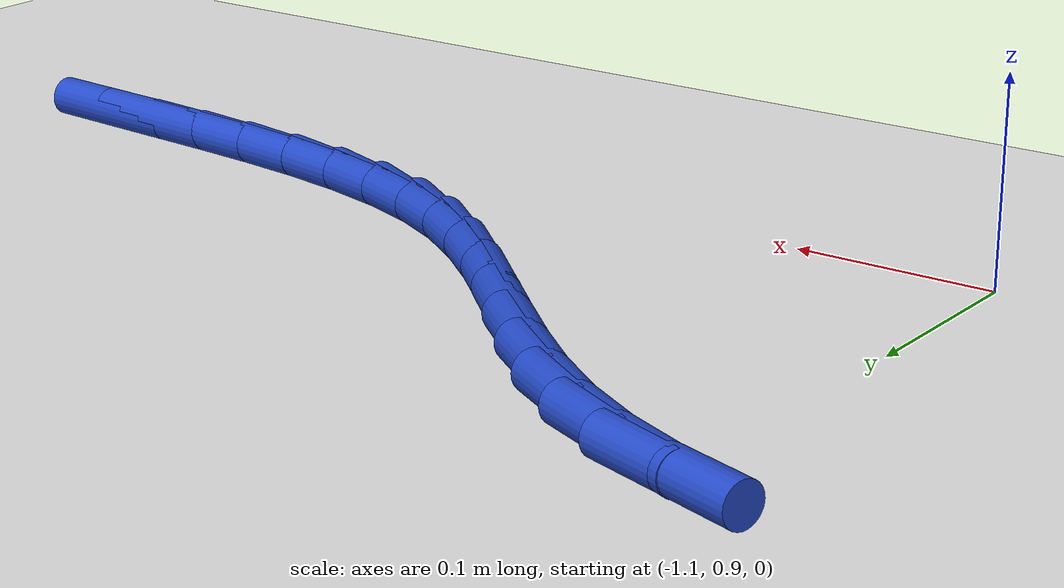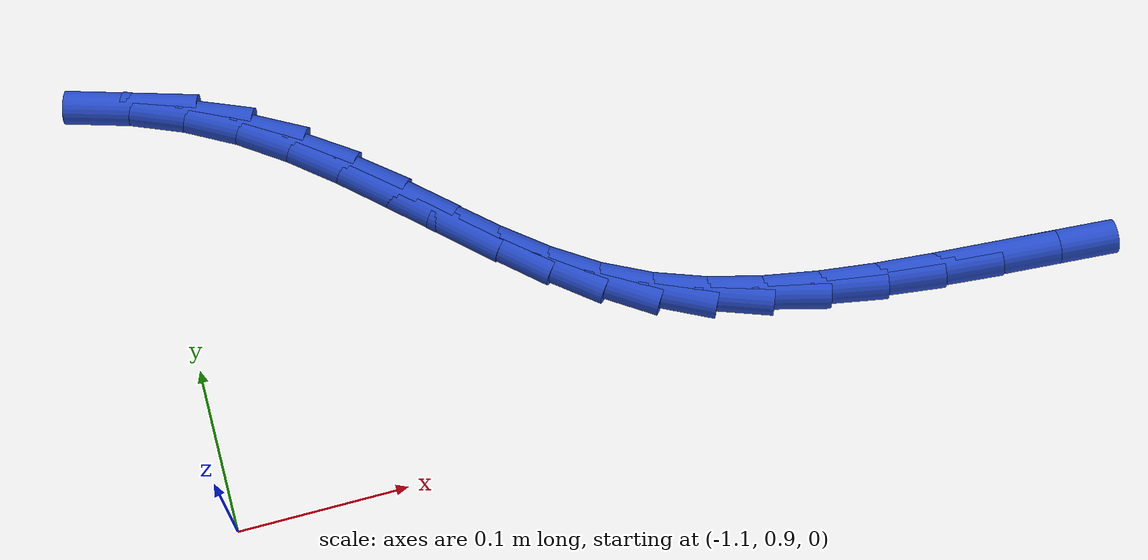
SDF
<sdf version="1.6">
 <world name="default">
  <model name="ground_plane">
   <static>1</static>
   <link name="link">
    <collision name="collision">
     <geometry><plane><normal>0 0 1</normal><size>100 100</size></plane></geometry>
     <surface><friction><ode><mu>100</mu><mu2>50</mu2></ode></friction></surface>
    </collision>
    <visual name="visual">
     <cast_shadows>0</cast_shadows>
     <geometry><plane><normal>0 0 1</normal><size>100 100</size></plane></geometry>
     <material>
      <script><uri>file://media/materials/scripts/gazebo.material</uri><name>Gazebo/WhiteGlow</name></script>
     </material>
    </visual>
   </link>
  </model>
  <model name="line">
   <link name="link_36">
    <pose>-0.6010848005966006 0.9383752076990033 0.01 0 1.57 -0.07106088073360295</pose>
    <collision name="collision">
     <geometry><cylinder><radius>0.01</radius><length>0.08</length></cylinder></geometry>
    </collision>
    <visual name="visual">
     <material>
      <script><name>Gazebo/Blue</name><uri>file://media/materials/scripts/gazebo.material</uri></script>
     </material>
     <geometry><cylinder><radius>0.01</radius><length>0.08</length></cylinder></geometry>
    </visual>
   </link>
   <link name="link_37">
    <pose>-0.6358047420626347 0.9408465986050201 0.01 0 1.57 -0.07159477339910743</pose>
    <collision name="collision">
     <geometry><cylinder><radius>0.01</radius><length>0.08</length></cylinder></geometry>
    </collision>
    <visual name="visual">
     <material>
      <script><name>Gazebo/Blue</name><uri>file://media/materials/scripts/gazebo.material</uri></script>
     </material>
     <geometry><cylinder><radius>0.01</radius><length>0.08</length></cylinder></geometry>
    </visual>
   </link>
   <link name="link_38">
    <pose>-0.6705306138085708 0.943337046166869 0.01 0 1.57 -0.08916173959354533</pose>
    <collision name="collision">
     <geometry><cylinder><radius>0.01</radius><length>0.08</length></cylinder></geometry>
    </collision>
    <visual name="visual">
     <material>
      <script><name>Gazebo/Blue</name><uri>file://media/materials/scripts/gazebo.material</uri></script>
     </material>
     <geometry><cylinder><radius>0.01</radius><length>0.08</length></cylinder></geometry>
    </visual>
   </link>
   <link name="link_39">
    <pose>-0.7049691732856316 0.9464158109036644 0.01 0 1.57 -0.12447398670273596</pose>
    <collision name="collision">
     <geometry><cylinder><radius>0.01</radius><length>0.08</length></cylinder></geometry>
    </collision>
    <visual name="visual">
     <material>
      <script><name>Gazebo/Blue</name><uri>file://media/materials/scripts/gazebo.material</uri></script>
     </material>
     <geometry><cylinder><radius>0.01</radius><length>0.08</length></cylinder></geometry>
    </visual>
   </link>
   <link name="link_40">
    <pose>-0.7388271779450399 0.9506521533345211 0.01 0 1.57 -0.17885703616114024</pose>
    <collision name="collision">
     <geometry><cylinder><radius>0.01</radius><length>0.08</length></cylinder></geometry>
    </collision>
    <visual name="visual">
     <material>
      <script><name>Gazebo/Blue</name><uri>file://media/materials/scripts/gazebo.material</uri></script>
     </material>
     <geometry><cylinder><radius>0.01</radius><length>0.08</length></cylinder></geometry>
    </visual>
   </link>
   <link name="link_41">
    <pose>-0.7718113852380175 0.9566153339785525 0.01 0 1.57 -0.25397988530833004</pose>
    <collision name="collision">
     <geometry><cylinder><radius>0.01</radius><length>0.08</length></cylinder></geometry>
    </collision>
    <visual name="visual">
     <material>
      <script><name>Gazebo/Blue</name><uri>file://media/materials/scripts/gazebo.material</uri></script>
     </material>
     <geometry><cylinder><radius>0.01</radius><length>0.08</length></cylinder></geometry>
    </visual>
   </link>
   <link name="link_42">
    <pose>-0.8036285526157874 0.9648746133548729 0.01 0 1.57 -0.3512641926403313</pose>
    <collision name="collision">
     <geometry><cylinder><radius>0.01</radius><length>0.08</length></cylinder></geometry>
    </collision>
    <visual name="visual">
     <material>
      <script><name>Gazebo/Blue</name><uri>file://media/materials/scripts/gazebo.material</uri></script>
     </material>
     <geometry><cylinder><radius>0.01</radius><length>0.08</length></cylinder></geometry>
    </visual>
   </link>
   <link name="link_43">
    <pose>-0.8339854375295722 0.9759992519825973 0.01 0 1.57 -0.47070807525748876</pose>
    <collision name="collision">
     <geometry><cylinder><radius>0.01</radius><length>0.08</length></cylinder></geometry>
    </collision>
    <visual name="visual">
     <material>
      <script><name>Gazebo/Blue</name><uri>file://media/materials/scripts/gazebo.material</uri></script>
     </material>
     <geometry><cylinder><radius>0.01</radius><length>0.08</length></cylinder></geometry>
    </visual>
   </link>
   <link name="link_44">
    <pose>-0.8625906279466391 0.9905552032842995 0.01 0 1.57 -0.5932454401975124</pose>
    <collision name="collision">
     <geometry><cylinder><radius>0.01</radius><length>0.08</length></cylinder></geometry>
    </collision>
    <visual name="visual">
     <material>
      <script><name>Gazebo/Blue</name><uri>file://media/materials/scripts/gazebo.material</uri></script>
     </material>
     <geometry><cylinder><radius>0.01</radius><length>0.08</length></cylinder></geometry>
    </visual>
   </link>
   <link name="link_45">
    <pose>-0.8894120114027217 1.0086399578642238 0.01 0 1.57 -0.6827453569097348</pose>
    <collision name="collision">
     <geometry><cylinder><radius>0.01</radius><length>0.08</length></cylinder></geometry>
    </collision>
    <visual name="visual">
     <material>
      <script><name>Gazebo/Blue</name><uri>file://media/materials/scripts/gazebo.material</uri></script>
     </material>
     <geometry><cylinder><radius>0.01</radius><length>0.08</length></cylinder></geometry>
    </visual>
   </link>
   <link name="link_46">
    <pose>-0.9149428097183611 1.029401912654445 0.01 0 1.57 -0.7362705213759442</pose>
    <collision name="collision">
     <geometry><cylinder><radius>0.01</radius><length>0.08</length></cylinder></geometry>
    </collision>
    <visual name="visual">
     <material>
      <script><name>Gazebo/Blue</name><uri>file://media/materials/scripts/gazebo.material</uri></script>
     </material>
     <geometry><cylinder><radius>0.01</radius><length>0.08</length></cylinder></geometry>
    </visual>
   </link>
   <link name="link_47">
    <pose>-0.9397397506891532 1.0518747317001647 0.01 0 1.57 -0.756089096847041</pose>
    <collision name="collision">
     <geometry><cylinder><radius>0.01</radius><length>0.08</length></cylinder></geometry>
    </collision>
    <visual name="visual">
     <material>
      <script><name>Gazebo/Blue</name><uri>file://media/materials/scripts/gazebo.material</uri></script>
     </material>
     <geometry><cylinder><radius>0.01</radius><length>0.08</length></cylinder></geometry>
    </visual>
   </link>
   <link name="link_48">
    <pose>-0.9643595621106947 1.0750920790465845 0.01 0 1.57 -0.7436707142709178</pose>
    <collision name="collision">
     <geometry><cylinder><radius>0.01</radius><length>0.08</length></cylinder></geometry>
    </collision>
    <visual name="visual">
     <material>
      <script><name>Gazebo/Blue</name><uri>file://media/materials/scripts/gazebo.material</uri></script>
     </material>
     <geometry><cylinder><radius>0.01</radius><length>0.08</length></cylinder></geometry>
    </visual>
   </link>
   <link name="link_49">
    <pose>-0.9893589717785811 1.098087618738905 0.01 0 1.57 -0.699142902192928</pose>
    <collision name="collision">
     <geometry><cylinder><radius>0.01</radius><length>0.08</length></cylinder></geometry>
    </collision>
    <visual name="visual">
     <material>
      <script><name>Gazebo/Blue</name><uri>file://media/materials/scripts/gazebo.material</uri></script>
     </material>
     <geometry><cylinder><radius>0.01</radius><length>0.08</length></cylinder></geometry>
    </visual>
   </link>
   <link name="link_50">
    <pose>-1.0152947074884089 1.1198950148223283 0.01 0 1.57 -0.6217187157018607</pose>
    <collision name="collision">
     <geometry><cylinder><radius>0.01</radius><length>0.08</length></cylinder></geometry>
    </collision>
    <visual name="visual">
     <material>
      <script><name>Gazebo/Blue</name><uri>file://media/materials/scripts/gazebo.material</uri></script>
     </material>
     <geometry><cylinder><radius>0.01</radius><length>0.08</length></cylinder></geometry>
    </visual>
   </link>
   <link name="link_51">
    <pose>-1.0427234970357744 1.1395479313420562 0.01 0 1.57 -0.514019873171341</pose>
    <collision name="collision">
     <geometry><cylinder><radius>0.01</radius><length>0.08</length></cylinder></geometry>
    </collision>
    <visual name="visual">
     <material>
      <script><name>Gazebo/Blue</name><uri>file://media/materials/scripts/gazebo.material</uri></script>
     </material>
     <geometry><cylinder><radius>0.01</radius><length>0.08</length></cylinder></geometry>
    </visual>
   </link>
   <link name="link_52">
    <pose>-1.0721344591613655 1.1561547798654945 0.01 0 1.57 -0.40179190764381983</pose>
    <collision name="collision">
     <geometry><cylinder><radius>0.01</radius><length>0.08</length></cylinder></geometry>
    </collision>
    <visual name="visual">
     <material>
      <script><name>Gazebo/Blue</name><uri>file://media/materials/scripts/gazebo.material</uri></script>
     </material>
     <geometry><cylinder><radius>0.01</radius><length>0.08</length></cylinder></geometry>
    </visual>
   </link>
   <link name="link_53">
    <pose>-1.10344317014604 1.1694580716055827 0.01 0 1.57 -0.2973701814789746</pose>
    <collision name="collision">
     <geometry><cylinder><radius>0.01</radius><length>0.08</length></cylinder></geometry>
    </collision>
    <visual name="visual">
     <material>
      <script><name>Gazebo/Blue</name><uri>file://media/materials/scripts/gazebo.material</uri></script>
     </material>
     <geometry><cylinder><radius>0.01</radius><length>0.08</length></cylinder></geometry>
    </visual>
   </link>
  </model>
 </world>
</sdf>
